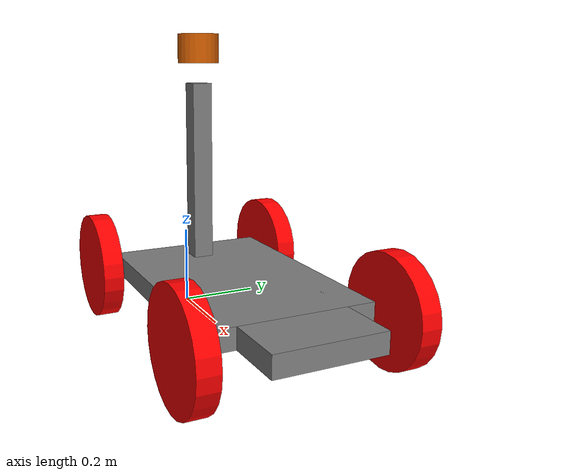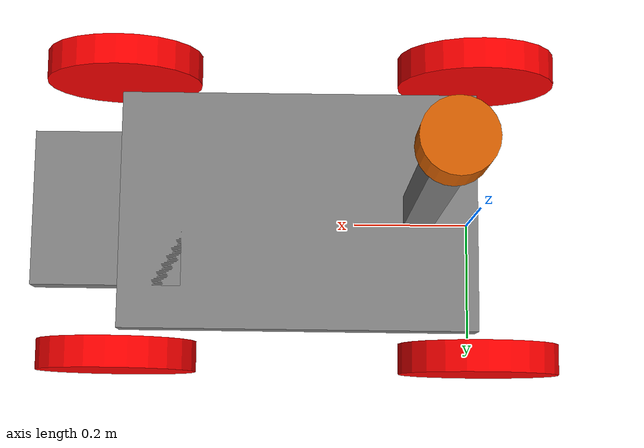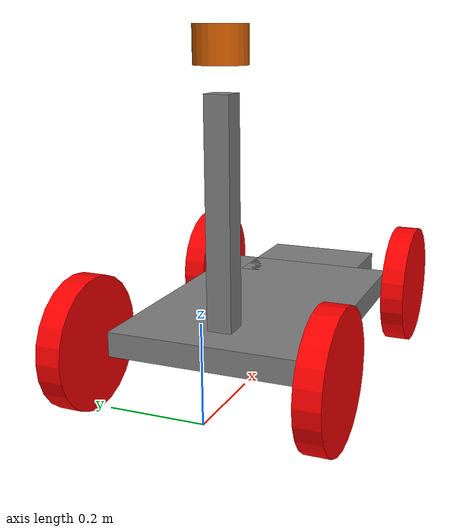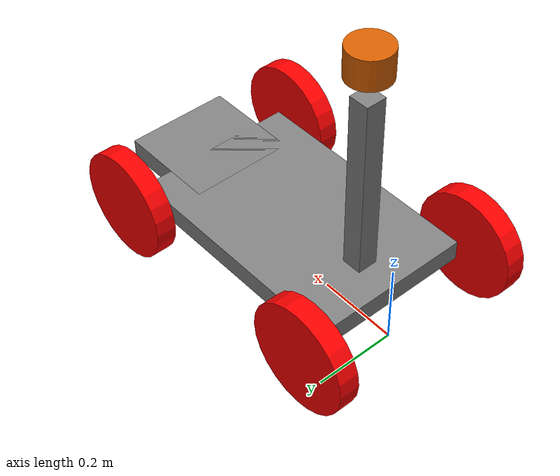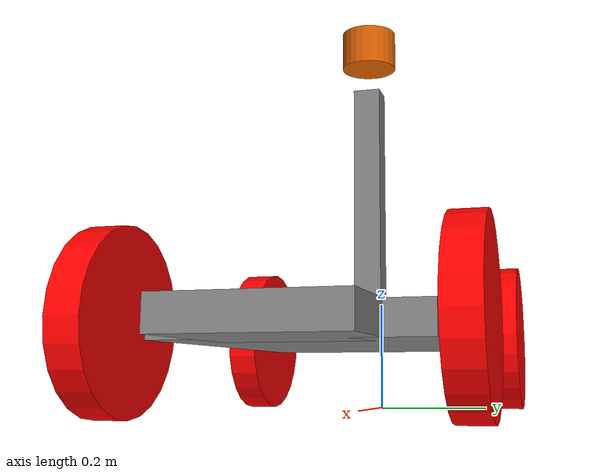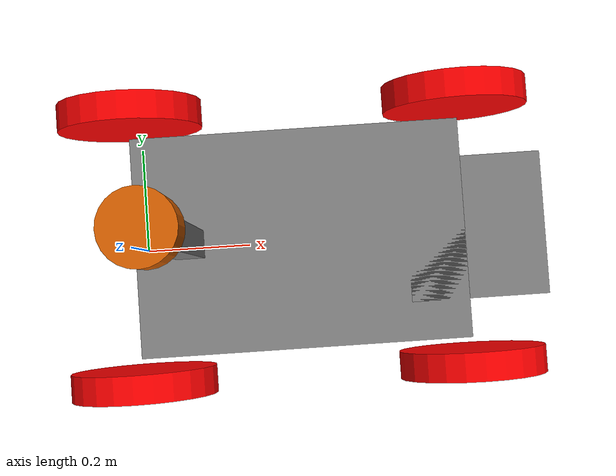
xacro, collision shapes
<?xml version="1.0"?>
<robot name="whill" xmlns:xacro="http://ros.org/wiki/xacro">
	<xacro:include filename="color.xacro" />
	<xacro:include filename="lrf.xacro" />
	<xacro:include filename="wheel.xacro" />

    <link name="base_footprint">

    </link>

    <link name="base_link">

    </link>

    <joint name="base_joint" type="fixed">
        <parent link="base_footprint" />
        <child link="base_link" />
        <origin xyz="0 0 0.1325" rpy="0 0 0"/>
    </joint>

    <link name="base_floor">
        <visual>
            <geometry>
                <box size="0.600 0.400 0.050"/>
            </geometry>
            <material name="grey">
                <color rgba="0.5 0.5 0.5 1.0"/>
            </material>
        </visual>

        <collision>
            <geometry>
                <box size="0.600 0.400 0.050"/>
            </geometry>
        </collision>

        <inertial>
            <origin xyz="0 0 0" rpy="0 0 0" />
            <mass value="40" />
            <inertia ixx="1.0"  ixy="0.0"   ixz="0.0"
                                iyy="1.0"   iyz="0.0"
                                            izz="1.0" />
        </inertial>
    </link>

    <joint name="base_body_joint" type="fixed">
        <parent link="base_link" />
        <child link="base_floor" />
        <origin xyz="0.3 0 0.0" rpy="0 0 0"/>
    </joint>

    <link name="footrest_link">
        <collision>
            <geometry>
                <box size="0.250 0.260 0.050"/>
            </geometry>
        </collision>
        <visual>
            <geometry>
                <box size="0.250 0.260 0.050"/>
            </geometry>
            <material name="grey">
                <color rgba="0.5 0.5 0.5 1.0"/>
            </material>
        </visual>
        <inertial>
            <origin xyz="0 0 0" rpy="0 0 0" />
            <mass value="1" />
            <inertia ixx="1.0"  ixy="0.0"   ixz="0.0"
                                iyy="1.0"   iyz="0.0"
                                            izz="1.0" />
        </inertial>
    </link>

    <joint name="footrest_joint" type="fixed">
        <parent link="base_floor" />
        <child link="footrest_link" />
        <origin xyz="0.320 0 0" rpy="0 0 0"/>
    </joint>

    <link name="sensor_arm_link">

        <collision>
            <origin xyz="0 0 0.225" rpy="0 0 0" />
            <geometry>
                <box size="0.05 0.05 0.45"/>
            </geometry>
        </collision>

        <visual>
            <origin xyz="0 0 0.225" rpy="0 0 0" />
            <geometry>
                <box size="0.05 0.05 0.45"/>
            </geometry>
            <material name="grey">
                <color rgba="0.5 0.5 0.5 1.0"/>
            </material>
        </visual>

        <inertial>
            <origin xyz="0 0 0" rpy="0 0 0" />
            <mass value="0.5" />
            <inertia ixx="1.0"  ixy="0.0"   ixz="0.0"
                                iyy="1.0"   iyz="0.0"
                                            izz="1.0" />
        </inertial>
    </link>

    <joint name="sensor_arm_joint" type="fixed">
        <axis xyz="0 1 0" />
        <origin xyz="-0.20 0 0.025" rpy="0 0 0"/>
        <parent link="base_floor"/>
        <child link="sensor_arm_link"/>
    </joint>

	<gazebo reference="body_link">
		<material>Gazebo/Gray</material>
		<!--摩擦係数-->
		<mu1>0.0</mu1>
		<mu2>0.0</mu2>
	</gazebo>

	<!--LRFの位置-->
    <!-- 3D LRF -->
    <xacro:include filename="$(find velodyne_description)/urdf/VLP-16.urdf.xacro"/>
    <xacro:VLP-16 parent="sensor_arm_link" name="velodyne" topic="/velodyne_points" hz="10" samples="440" gpu="false">
        <origin xyz="0 0 0.5" rpy="0 0 0" />
    </xacro:VLP-16>
	<!--車輪の位置-->
	<xacro:wheel_macro prefix="rearwheel_right" parent="base_floor" xyz="-0.3 -0.245 0" rpy="1.57 0 0" axis="0 0 -1" radius="0.1325" length="0.05" mu1="1.0" mu2="1.0"/>
	<xacro:wheel_macro prefix="rearwheel_left"  parent="base_floor" xyz="-0.3 0.245 0" rpy="-1.57 0 0" axis="0 0 1" radius="0.1325" length="0.05" mu1="1.0" mu2="1.0"/>
	<xacro:wheel_macro prefix="frontwheel_right" parent="base_floor" xyz="0.3 0.245 0" rpy="1.57 0 0" axis="0 0 -1" radius="0.1325" length="0.05" mu1="0.0" mu2="1.0"/>
	<xacro:wheel_macro prefix="frontwheel_left" parent="base_floor" xyz="0.3 -0.245 0" rpy="1.57 0 0" axis="0 0 1" radius="0.1325" length="0.05" mu1="0.0" mu2="1.0"/>

	<!--プラグインの設定-->
	<gazebo>
    <plugin name="diff_drive_controller" filename="libgazebo_ros_diff_drive.so">
        <updateRate>50.0</updateRate>
        <left_joint>rearwheel_left_joint</left_joint>
        <right_joint>rearwheel_right_joint</right_joint>
        <wheel_separation>0.49</wheel_separation>
        <wheel_diameter>0.05</wheel_diameter>
        <commandTopic>cmd_vel</commandTopic>
        <torque>50</torque>
        <odometry_frame>odom</odometry_frame>
        <robot_base_frame>base_footprint</robot_base_frame>
        <!-- output -->
        <publish_odom>true</publish_odom>
        <publish_odom_tf>true</publish_odom_tf>
        <publish_wheel_tf>true</publish_wheel_tf>
    </plugin>
	</gazebo>
</robot>

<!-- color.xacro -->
<robot name="whill" xmlns:xacro="http://ros.org/wiki/xacro">

	<material name="Black">
		<color rgba="0 0 0 1" />
	</material>
	<material name="White">
		<color rgba="1 1 1 1" />
	</material>
	<material name="gray">
		<color rgba="0.5 0.5 0.5 1"/>
	</material>
	<material name="red">
		<color rgba="1 0 0 1"/>
	</material>
	<material name="green">
		<color rgba="0 1 0 1"/>
	</material>
	<material name="blue">
		<color rgba="0 0 1 1"/>
	</material>
	<material name="clear_gray">
		<color rgba="0.5 0.5 0.5 0.3"/>
	</material>

</robot>

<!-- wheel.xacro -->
<robot name="whill" xmlns:xacro="http://ros.org/wiki/xacro">

	<xacro:macro name="wheel_macro" params="parent prefix xyz rpy axis radius length mu1 mu2">
        <!-- drive Link -->
		<joint name="${prefix}_joint" type="continuous">
			<origin xyz="${xyz}" rpy="${rpy}" />
			<parent link="${parent}"/>
			<child  link="${prefix}"/>
			<axis xyz="${axis}"/>
		</joint>
		<link name="${prefix}">
			<inertial>
				<origin xyz="0 0 0" rpy="0 0 0" />
        <mass value="0.500"/>
        <inertia ixx="0.0013541667" ixy="0" ixz="0" iyy="0.0013541667" iyz="0" izz="0.0025"/>
			</inertial>
			<visual>
				<origin xyz="0 0 0" rpy="0 0 0" />
				<geometry>
					<cylinder radius="${radius}" length="${length}" />
				</geometry>
				<material name="red"/>
			</visual>
			<collision>
				<origin xyz="0 0 0" rpy="0 0 0" />
				<geometry>
					<cylinder radius="${radius}" length="${length}" />
				</geometry>
			</collision>
		</link>
		<gazebo reference="${prefix}">
			<material>Gazebo/Red</material>
			<selfCollide>true</selfCollide>
			<mu1 value="${mu1}" />
			<mu2 value="${mu2}" />
			<fdir1>0 0 1</fdir1>
		</gazebo>
	</xacro:macro>
</robot>

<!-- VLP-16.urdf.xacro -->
<robot xmlns:xacro="http://www.ros.org/wiki/xacro" name="VLP-16">
  <xacro:property name="M_PI" value="3.1415926535897931" />
  <xacro:macro name="VLP-16" params="*origin is_sim:=true parent:=base_link name:=velodyne tf_prefix:='' topic:=/velodyne_points organize_cloud:=false hz:=10 lasers:=16 samples:=1875 collision_range:=0.3 min_range:=0.0 max_range:=100.0 noise:=0.008 min_angle:=-${M_PI} max_angle:=${M_PI} gpu:=false">

    <joint name="${name}_base_mount_joint" type="fixed">
      <xacro:insert_block name="origin" />
      <parent link="${parent}"/>
      <child link="${name}_base_link"/>
    </joint>

    <link name="${name}_base_link">
      <inertial>
        <mass value="0.83"/>
        <origin xyz="0 0 0.03585"/>
        <inertia ixx="${(0.83 * (3.0*0.0516*0.0516 + 0.0717*0.0717)) / 12.0}" ixy="0" ixz="0"
          iyy="${(0.83 * (3.0*0.0516*0.0516 + 0.0717*0.0717)) / 12.0}" iyz="0"
          izz="${0.5 * 0.83 * (0.0516*0.0516)}"/>
      </inertial>
      <visual>
        <geometry>
          <mesh filename="package://velodyne_description/meshes/VLP16_base_1.dae" />
        </geometry>
      </visual>
      <visual>
        <geometry>
          <mesh filename="package://velodyne_description/meshes/VLP16_base_2.dae" />
        </geometry>
      </visual>
      <collision>
        <origin rpy="0 0 0" xyz="0 0 0.03585"/>
        <geometry>
          <cylinder radius="0.0516" length="0.0717"/>
        </geometry>
      </collision>
    </link>

    <joint name="${name}_base_scan_joint" type="fixed" >
      <origin xyz="0 0 0.0377" rpy="0 0 0" />
      <parent link="${name}_base_link" />
      <child link="${name}"/>
    </joint>

    <link name="${name}">
      <inertial>
        <mass value="0.01"/>
        <origin xyz="0 0 0"/>
        <inertia ixx="1e-7" ixy="0" ixz="0" iyy="1e-7" iyz="0" izz="1e-7"/>
      </inertial>
      <visual>
        <origin xyz="0 0 -0.0377" />
        <geometry>
          <mesh filename="package://velodyne_description/meshes/VLP16_scan.dae" />
        </geometry>
      </visual>
      <collision>
        <geometry>
          <sphere radius="0"/>
        </geometry>
      </collision>
    </link>

    <!-- Gazebo requires the velodyne_gazebo_plugins package -->
    <xacro:if value="${is_sim}">
        <gazebo reference="${name}">
            <xacro:if value="${gpu}">
                <sensor type="gpu_ray" name="${name}-VLP16">
                <pose>0 0 0 0 0 0</pose>
                <visualize>false</visualize>
                <update_rate>${hz}</update_rate>
                <ray>
                    <scan>
                    <horizontal>
                        <samples>${samples}</samples>
                        <resolution>1</resolution>
                        <min_angle>${min_angle}</min_angle>
                        <max_angle>${max_angle}</max_angle>
                    </horizontal>
                    <vertical>
                        <samples>${lasers}</samples>
                        <resolution>1</resolution>
                        <min_angle>-${15.0*M_PI/180.0}</min_angle>
                        <max_angle> ${15.0*M_PI/180.0}</max_angle>
                    </vertical>
                    </scan>
                    <range>
                    <min>${collision_range}</min>
                    <max>${max_range+1}</max>
                    <resolution>0.001</resolution>
                    </range>
                    <noise>
                    <type>gaussian</type>
                    <mean>0.0</mean>
                    <stddev>0.0</stddev>
                    </noise>
                </ray>
                <plugin name="gazebo_ros_laser_controller" filename="libgazebo_ros_velodyne_laser.so">
                    <ros>
                    <namespace>/${name}</namespace>
                    <remapping>~/out:=${topic}</remapping>
                    </ros>
                    <tf_prefix>${tf_prefix}</tf_prefix>
                    <frame_name>${name}</frame_name>
                    <organize_cloud>${organize_cloud}</organize_cloud>
                    <min_range>${min_range}</min_range>
                    <max_range>${max_range}</max_range>
                    <gaussian_noise>${noise}</gaussian_noise>
                </plugin>
                </sensor>
            </xacro:if>
            <xacro:unless value="${gpu}">
                <sensor type="ray" name="${name}-VLP16">
                <pose>0 0 0 0 0 0</pose>
                <visualize>false</visualize>
                <update_rate>${hz}</update_rate>
                <ray>
                    <scan>
                    <horizontal>
                        <samples>${samples}</samples>
                        <resolution>1</resolution>
                        <min_angle>${min_angle}</min_angle>
                        <max_angle>${max_angle}</max_angle>
                    </horizontal>
                    <vertical>
                        <samples>${lasers}</samples>
                        <resolution>1</resolution>
                        <min_angle>-${15.0*M_PI/180.0}</min_angle>
                        <max_angle> ${15.0*M_PI/180.0}</max_angle>
                    </vertical>
                    </scan>
                    <range>
                    <min>${collision_range}</min>
                    <max>${max_range+1}</max>
                    <resolution>0.001</resolution>
                    </range>
                    <noise>
                    <type>gaussian</type>
                    <mean>0.0</mean>
                    <stddev>0.0</stddev>
                    </noise>
                </ray>
                <plugin name="gazebo_ros_laser_controller" filename="libgazebo_ros_velodyne_laser.so">
                    <ros>
                    <namespace>/${name}</namespace>
                    <remapping>~/out:=${topic}</remapping>
                    </ros>
                    <tf_prefix>${tf_prefix}</tf_prefix>
                    <frame_name>${name}</frame_name>
                    <organize_cloud>${organize_cloud}</organize_cloud>
                    <min_range>${min_range}</min_range>
                    <max_range>${max_range}</max_range>
                    <gaussian_noise>${noise}</gaussian_noise>
                </plugin>
                </sensor>
            </xacro:unless>
        </gazebo>
    </xacro:if>

  </xacro:macro>
</robot>
